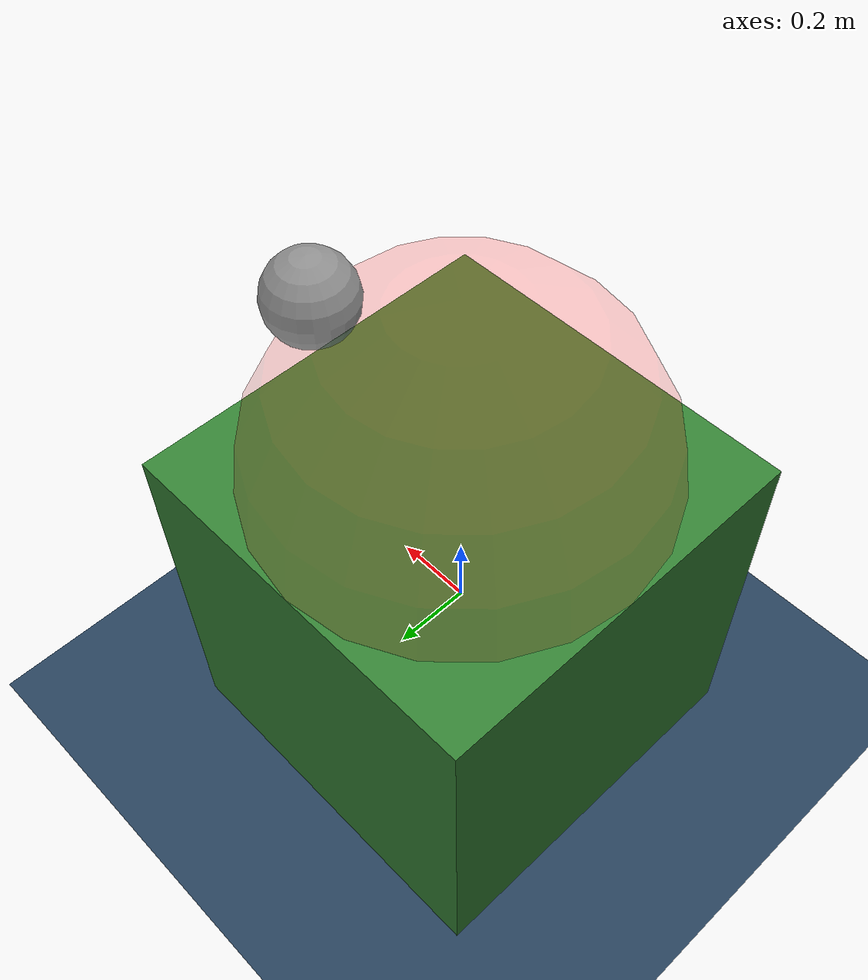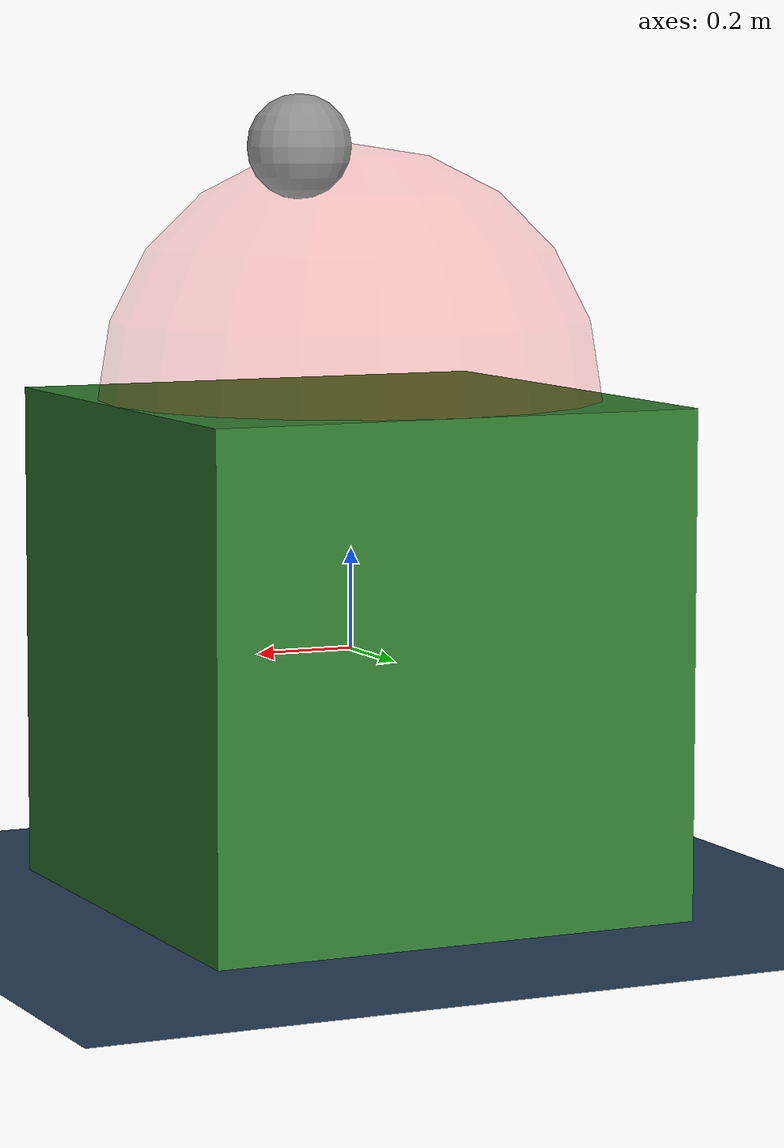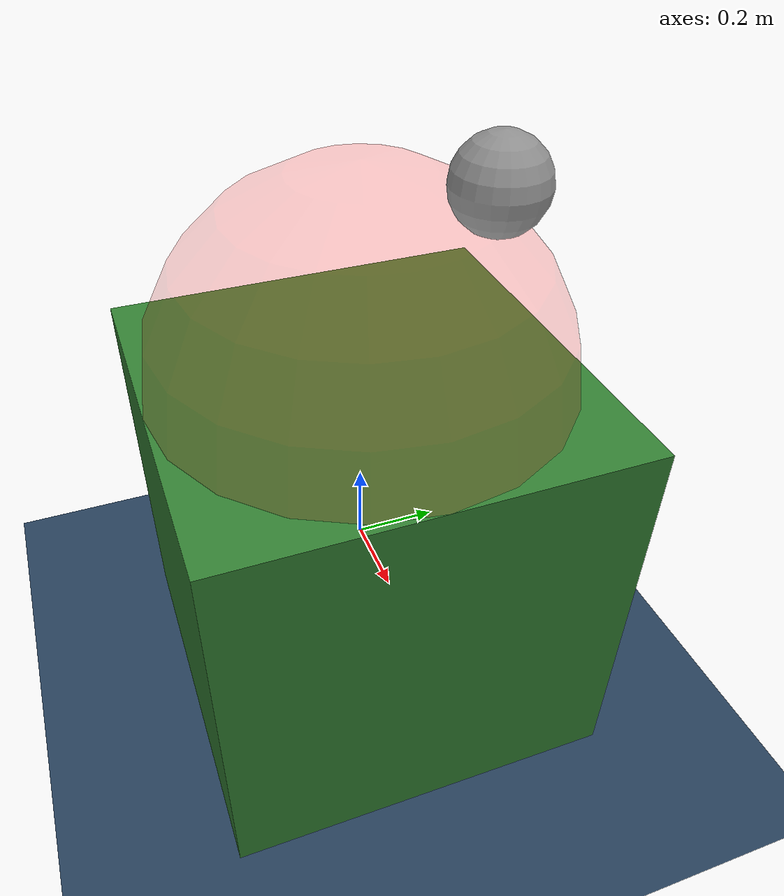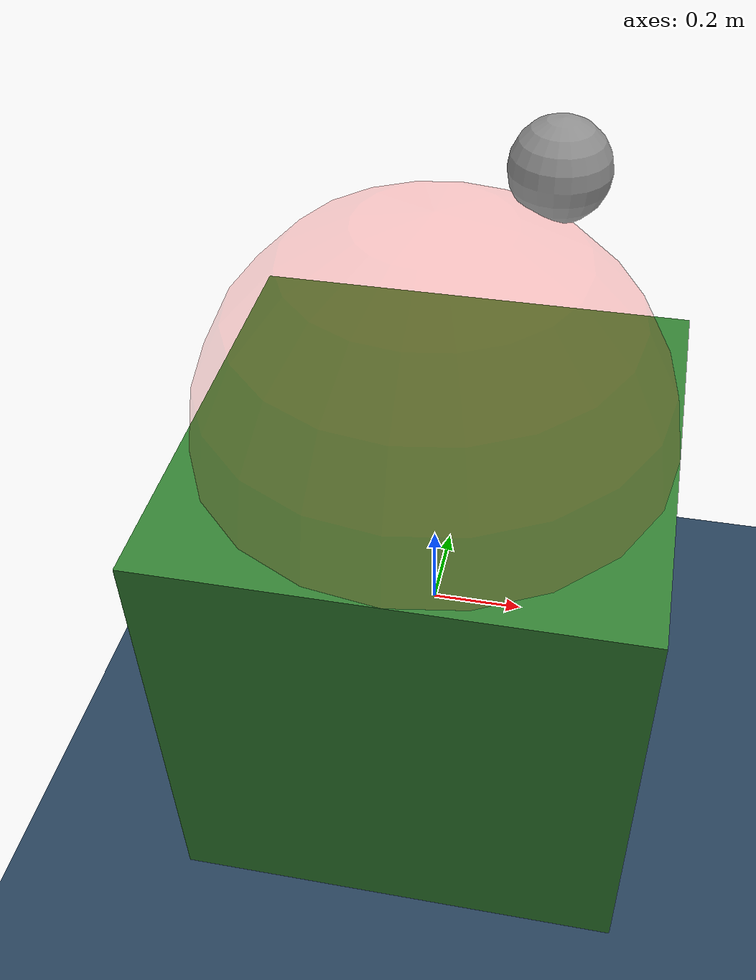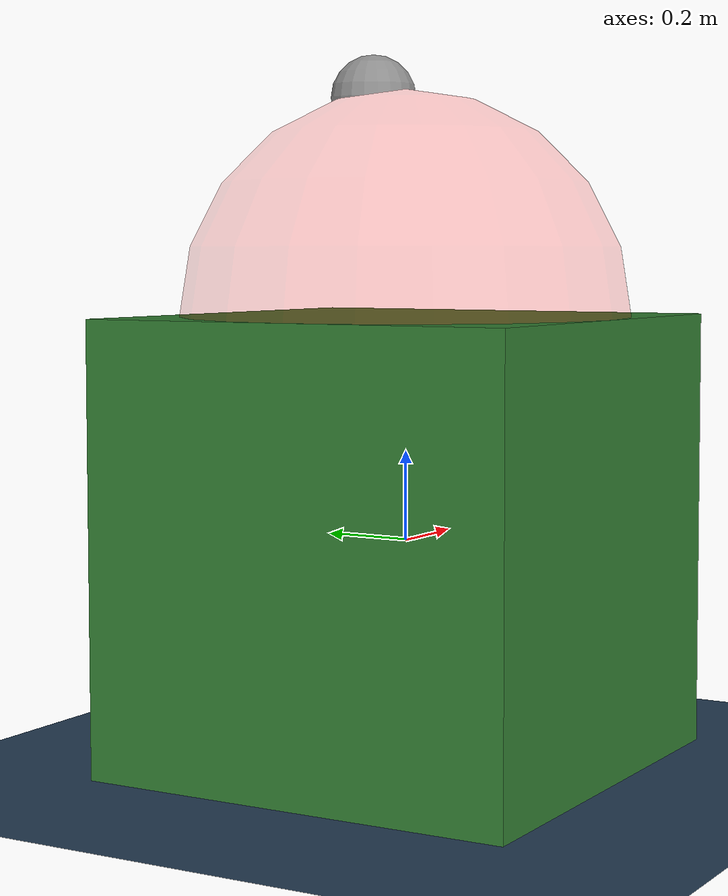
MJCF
<mujoco model="touchtest">
  <compiler autolimits="true" angle="degree"/>

  <extension>
    <plugin plugin="mujoco.sensor.touch_grid"/>
  </extension>

  <asset>
    <texture name="grid" type="2d" builtin="checker" rgb1=".1 .2 .3" rgb2=".2 .3 .4"
             width="300" height="300" mark="edge" markrgb=".2 .3 .4"/>
    <material name="grid_mat" texture="grid" texrepeat="3 3" texuniform="true"/>
  </asset>

  <visual>
    <headlight ambient=".6 .6 .6" diffuse=".3 .3 .3" specular="0.1 0.1 0.1"/>
    <map znear="0.01"/>
    <scale contactwidth=".05" contactheight=".5"/>
  </visual>

  <default>
    <geom friction="1.0" solimp="0 0.95 0.02" solref="0.02 1"/>
  </default>

  <statistic center="0 0 0.5" extent="1.5"/>

<worldbody>
  <light pos="0 0 2" dir="0 0 -1"/>
  <geom name="floor" pos="0 0 -0.5" type="plane" size="5 5 0.1" material="grid_mat"/>

  <body name="box_body" pos="0 0 0">
    <!-- 加一个 weld joint，让它有 joint 但固定在世界 -->
    <freejoint/>   <!-- 先用 freejoint，再用 equality 锁死 -->
    <inertial pos="0 0 0" mass="100" diaginertia="100 100 100"/>
    <geom name="box_geom" type="box" size="0.5 0.5 0.5" rgba="0.2 0.5 0.2 1"/>
    <site name="touch_site" pos="0 0 0.5" size=".5" rgba="1 0 0 0.1"/>
  </body>

  <body name="ball" pos="0.2 0.2 1">
    <joint name="free" type="free"/>
    <geom name="ball_geom" type="sphere" size="0.1" mass="1" rgba=".5 .5 .5 .8"/>
  </body>
</worldbody>

<!-- 用 equality 把 box 焊死在世界原点 -->
<equality>
  <weld body1="box_body" relpose="0 0 0 1 0 0 0"/>
</equality>
  <sensor>
    <plugin name="touch_sensor" plugin="mujoco.sensor.touch_grid"
            objtype="site" objname="touch_site">
      <config key="size" value="100 100"/>
      <config key="fov" value="60 60"/>
      <config key="gamma" value="1.0"/>
      <config key="nchannel" value="1"/>
    </plugin>
  </sensor>
</mujoco>
